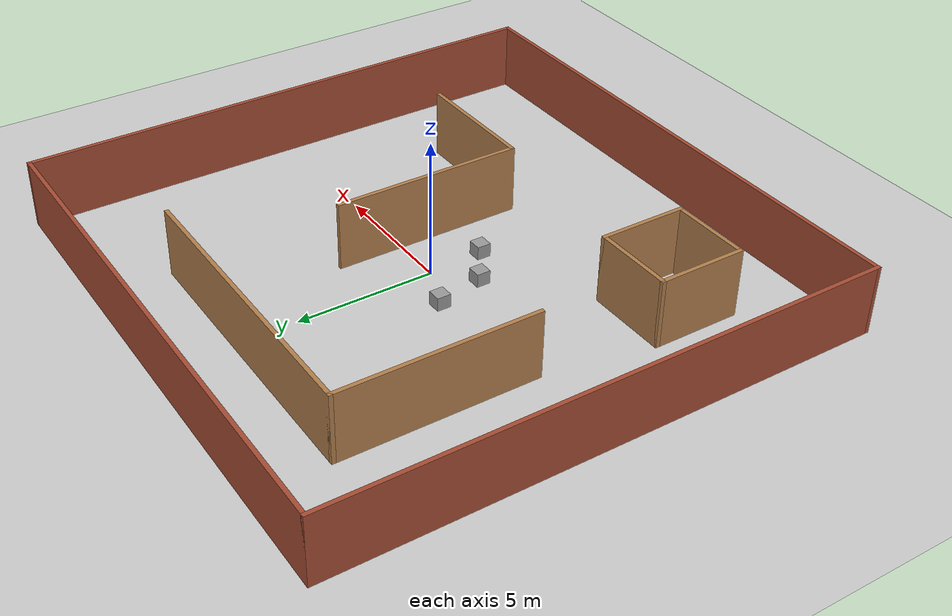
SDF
<sdf version="1.7">
 <world name="default">
  <light name="sun" type="directional">
   <pose>0 0 10 0 -0 0</pose>
   <diffuse>0.8 0.8 0.8 1</diffuse>
   <specular>0.2 0.2 0.2 1</specular>
   <attenuation>
    <range>1000</range>
    <constant>0.9</constant>
    <linear>0.01</linear>
    <quadratic>0.001</quadratic>
   </attenuation>
   <direction>-0.5 0.1 -0.9</direction>
   <spot><inner_angle>0</inner_angle><outer_angle>0</outer_angle><falloff>0</falloff></spot>
  </light>
  <model name="ground_plane">
   <static>1</static>
   <link name="link">
    <collision name="collision">
     <geometry><plane><normal>0 0 1</normal><size>100 100</size></plane></geometry>
     <surface><friction><ode><mu>100</mu><mu2>50</mu2></ode></friction></surface>
    </collision>
    <visual name="visual">
     <cast_shadows>0</cast_shadows>
     <geometry><plane><normal>0 0 1</normal><size>100 100</size></plane></geometry>
     <material>
      <script><uri>file://media/materials/scripts/gazebo.material</uri><name>Gazebo/Grey</name></script>
     </material>
    </visual>
   </link>
  </model>
  <model name="obstacle_0">
   <link name="link">
    <pose>0 0 0.9 0 -0 0</pose>
    <inertial>
     <mass>1</mass>
     <inertia><ixx>0.042</ixx><ixy>0</ixy><ixz>0</ixz><iyy>0.042</iyy><iyz>0</iyz><izz>0.042</izz></inertia>
    </inertial>
    <collision name="collision">
     <geometry><box><size>0.5 0.5 0.5</size></box></geometry>
     <surface>
      <contact>
       <poissons_ratio>0.347</poissons_ratio>
       <elastic_modulus>8.8e+09</elastic_modulus>
       <ode><kp>100000</kp><kd>100</kd><max_vel>100</max_vel><min_depth>0.001</min_depth></ode>
      </contact>
      <friction>
       <torsional>
        <coefficient>1</coefficient>
        <use_patch_radius>0</use_patch_radius>
        <surface_radius>0.01</surface_radius>
       </torsional>
      </friction>
     </surface>
    </collision>
    <visual name="visual">
     <geometry><box><size>0.5 0.5 0.5</size></box></geometry>
     <material>
      <script><uri>file://media/materials/scripts/gazebo.material</uri><name>Gazebo/Grey</name></script>
     </material>
    </visual>
   </link>
   <pose>-1.64647 0.681065 -0.651024 0 -0 0</pose>
  </model>
  <model name="obstacle_1">
   <link name="link">
    <pose>0 0 0.9 0 -0 0</pose>
    <inertial>
     <mass>1</mass>
     <inertia><ixx>0.042</ixx><ixy>0</ixy><ixz>0</ixz><iyy>0.042</iyy><iyz>0</iyz><izz>0.042</izz></inertia>
    </inertial>
    <collision name="collision">
     <geometry><box><size>0.5 0.5 0.5</size></box></geometry>
     <surface>
      <contact>
       <poissons_ratio>0.347</poissons_ratio>
       <elastic_modulus>8.8e+09</elastic_modulus>
       <ode><kp>100000</kp><kd>100</kd><max_vel>100</max_vel><min_depth>0.001</min_depth></ode>
      </contact>
      <friction>
       <torsional>
        <coefficient>1</coefficient>
        <use_patch_radius>0</use_patch_radius>
        <surface_radius>0.01</surface_radius>
       </torsional>
      </friction>
     </surface>
    </collision>
    <visual name="visual">
     <geometry><box><size>0.5 0.5 0.5</size></box></geometry>
     <material>
      <script><uri>file://media/materials/scripts/gazebo.material</uri><name>Gazebo/Grey</name></script>
     </material>
    </visual>
   </link>
   <pose>0.08192 -2.03105 -0.651024 0 -0 0</pose>
  </model>
  <gravity>0 0 -9.8</gravity>
  <magnetic_field>6e-06 2.3e-05 -4.2e-05</magnetic_field>
  <atmosphere type="adiabatic"/>
  <physics name="default_physics" default="0" type="ode">
   <max_step_size>0.001</max_step_size>
   <real_time_factor>1</real_time_factor>
   <real_time_update_rate>1000</real_time_update_rate>
  </physics>
  <scene><ambient>0.4 0.4 0.4 1</ambient><background>0.7 0.7 0.7 1</background><shadows>1</shadows></scene>
  <audio><device>default</device></audio>
  <spherical_coordinates>
   <surface_model>EARTH_WGS84</surface_model>
   <latitude_deg>0</latitude_deg>
   <longitude_deg>0</longitude_deg>
   <elevation>0</elevation>
   <heading_deg>0</heading_deg>
  </spherical_coordinates>
  <model name="test_world">
   <pose>-0.054909 0.04323 0 0 -0 0</pose>
   <link name="Wall_0">
    <collision name="Wall_0_Collision">
     <geometry><box><size>20 0.15 2.5</size></box></geometry>
     <pose>0 0 1.25 0 -0 0</pose>
    </collision>
    <visual name="Wall_0_Visual">
     <pose>0 0 1.25 0 -0 0</pose>
     <geometry><box><size>20 0.15 2.5</size></box></geometry>
     <material>
      <script><uri>file://media/materials/scripts/gazebo.material</uri><name>Gazebo/Bricks</name></script>
      <ambient>1 1 1 1</ambient>
     </material>
     <meta><layer>0</layer></meta>
    </visual>
    <pose>0 -9.925 0 0 -0 3.14159</pose>
   </link>
   <link name="Wall_10">
    <collision name="Wall_10_Collision">
     <geometry><box><size>7.25 0.15 2.5</size></box></geometry>
     <pose>0 0 1.25 0 -0 0</pose>
    </collision>
    <visual name="Wall_10_Visual">
     <pose>0 0 1.25 0 -0 0</pose>
     <geometry><box><size>7.25 0.15 2.5</size></box></geometry>
     <material>
      <script><uri>file://media/materials/scripts/gazebo.material</uri><name>Gazebo/Wood</name></script>
      <ambient>1 1 1 1</ambient>
     </material>
     <meta><layer>0</layer></meta>
    </visual>
    <pose>-6.24837 3.63958 0 0 -0 -1.5708</pose>
   </link>
   <link name="Wall_12">
    <collision name="Wall_12_Collision">
     <geometry><box><size>11 0.15 2.5</size></box></geometry>
     <pose>0 0 1.25 0 -0 0</pose>
    </collision>
    <visual name="Wall_12_Visual">
     <pose>0 0 1.25 0 -0 0</pose>
     <geometry><box><size>11 0.15 2.5</size></box></geometry>
     <material>
      <script><uri>file://media/materials/scripts/gazebo.material</uri><name>Gazebo/Wood</name></script>
      <ambient>1 1 1 1</ambient>
     </material>
     <meta><layer>0</layer></meta>
    </visual>
    <pose>-0.823369 7.18958 0 0 -0 0</pose>
   </link>
   <link name="Wall_2">
    <collision name="Wall_2_Collision">
     <geometry><box><size>20 0.15 2.5</size></box></geometry>
     <pose>0 0 1.25 0 -0 0</pose>
    </collision>
    <visual name="Wall_2_Visual">
     <pose>0 0 1.25 0 -0 0</pose>
     <geometry><box><size>20 0.15 2.5</size></box></geometry>
     <material>
      <script><uri>file://media/materials/scripts/gazebo.material</uri><name>Gazebo/Bricks</name></script>
      <ambient>1 1 1 1</ambient>
     </material>
     <meta><layer>0</layer></meta>
    </visual>
    <pose>-9.925 0 0 0 -0 1.5708</pose>
   </link>
   <link name="Wall_20">
    <collision name="Wall_20_Collision">
     <geometry><box><size>3.25 0.15 2.5</size></box></geometry>
     <pose>0 0 1.25 0 -0 0</pose>
    </collision>
    <visual name="Wall_20_Visual">
     <pose>0 0 1.25 0 -0 0</pose>
     <geometry><box><size>3.25 0.15 2.5</size></box></geometry>
     <material>
      <script><uri>file://media/materials/scripts/gazebo.material</uri><name>Gazebo/Wood</name></script>
      <ambient>1 1 1 1</ambient>
     </material>
     <meta><layer>0</layer></meta>
    </visual>
    <pose>-6.99006 -5.43848 0 0 -0 -1.5708</pose>
   </link>
   <link name="Wall_22">
    <collision name="Wall_22_Collision">
     <geometry><box><size>3 0.15 2.5</size></box></geometry>
     <pose>0 0 1.25 0 -0 0</pose>
    </collision>
    <visual name="Wall_22_Visual">
     <pose>0 0 1.25 0 -0 0</pose>
     <geometry><box><size>3 0.15 2.5</size></box></geometry>
     <material>
      <script><uri>file://media/materials/scripts/gazebo.material</uri><name>Gazebo/Wood</name></script>
      <ambient>1 1 1 1</ambient>
     </material>
     <meta><layer>0</layer></meta>
    </visual>
    <pose>-5.56506 -3.88848 0 0 -0 0</pose>
   </link>
   <link name="Wall_23">
    <collision name="Wall_23_Collision">
     <geometry><box><size>3.25 0.15 2.5</size></box></geometry>
     <pose>0 0 1.25 0 -0 0</pose>
    </collision>
    <visual name="Wall_23_Visual">
     <pose>0 0 1.25 0 -0 0</pose>
     <geometry><box><size>3.25 0.15 2.5</size></box></geometry>
     <material>
      <script><uri>file://media/materials/scripts/gazebo.material</uri><name>Gazebo/Wood</name></script>
      <ambient>1 1 1 1</ambient>
     </material>
     <meta><layer>0</layer></meta>
    </visual>
    <pose>-4.14006 -5.43848 0 0 -0 -1.5708</pose>
   </link>
   <link name="Wall_24">
    <collision name="Wall_24_Collision">
     <geometry><box><size>3 0.15 2.5</size></box></geometry>
     <pose>0 0 1.25 0 -0 0</pose>
    </collision>
    <visual name="Wall_24_Visual">
     <pose>0 0 1.25 0 -0 0</pose>
     <geometry><box><size>3 0.15 2.5</size></box></geometry>
     <material>
      <script><uri>file://media/materials/scripts/gazebo.material</uri><name>Gazebo/Wood</name></script>
      <ambient>1 1 1 1</ambient>
     </material>
     <meta><layer>0</layer></meta>
    </visual>
    <pose>-5.56506 -6.98848 0 0 -0 3.14159</pose>
   </link>
   <link name="Wall_4">
    <collision name="Wall_4_Collision">
     <geometry><box><size>20 0.15 2.5</size></box></geometry>
     <pose>0 0 1.25 0 -0 0</pose>
    </collision>
    <visual name="Wall_4_Visual">
     <pose>0 0 1.25 0 -0 0</pose>
     <geometry><box><size>20 0.15 2.5</size></box></geometry>
     <material>
      <script><uri>file://media/materials/scripts/gazebo.material</uri><name>Gazebo/Bricks</name></script>
      <ambient>1 1 1 1</ambient>
     </material>
     <meta><layer>0</layer></meta>
    </visual>
    <pose>0 9.925 0 0 -0 0</pose>
   </link>
   <link name="Wall_5">
    <collision name="Wall_5_Collision">
     <geometry><box><size>20 0.15 2.5</size></box></geometry>
     <pose>0 0 1.25 0 -0 0</pose>
    </collision>
    <visual name="Wall_5_Visual">
     <pose>0 0 1.25 0 -0 0</pose>
     <geometry><box><size>20 0.15 2.5</size></box></geometry>
     <material>
      <script><uri>file://media/materials/scripts/gazebo.material</uri><name>Gazebo/Bricks</name></script>
      <ambient>1 1 1 1</ambient>
     </material>
     <meta><layer>0</layer></meta>
    </visual>
    <pose>9.925 0 0 0 -0 -1.5708</pose>
   </link>
   <link name="Wall_7">
    <collision name="Wall_7_Collision">
     <geometry><box><size>7 0.15 2.5</size></box></geometry>
     <pose>0 0 1.25 0 -0 0</pose>
    </collision>
    <visual name="Wall_7_Visual">
     <pose>0 0 1.25 0 -0 0</pose>
     <geometry><box><size>7 0.15 2.5</size></box></geometry>
     <material>
      <script><uri>file://media/materials/scripts/gazebo.material</uri><name>Gazebo/Wood</name></script>
      <ambient>1 1 1 1</ambient>
     </material>
     <meta><layer>0</layer></meta>
    </visual>
    <pose>1.9807 -1.15765 0 0 -0 -1.5708</pose>
   </link>
   <link name="Wall_8">
    <collision name="Wall_8_Collision">
     <geometry><box><size>4.75 0.15 2.5</size></box></geometry>
     <pose>0 0 1.25 0 -0 0</pose>
    </collision>
    <visual name="Wall_8_Visual">
     <pose>0 0 1.25 0 -0 0</pose>
     <geometry><box><size>4.75 0.15 2.5</size></box></geometry>
     <material>
      <script><uri>file://media/materials/scripts/gazebo.material</uri><name>Gazebo/Wood</name></script>
      <ambient>1 1 1 1</ambient>
     </material>
     <meta><layer>0</layer></meta>
    </visual>
    <pose>4.32116 -4.58265 0 0 -0 0</pose>
   </link>
   <static>1</static>
  </model>
  <model name="obstacle_2">
   <link name="link">
    <pose>0 0 0.9 0 -0 0</pose>
    <inertial>
     <mass>1</mass>
     <inertia><ixx>0.042</ixx><ixy>0</ixy><ixz>0</ixz><iyy>0.042</iyy><iyz>0</iyz><izz>0.042</izz></inertia>
    </inertial>
    <collision name="collision">
     <geometry><box><size>0.5 0.5 0.5</size></box></geometry>
     <surface>
      <contact>
       <poissons_ratio>0.347</poissons_ratio>
       <elastic_modulus>8.8e+09</elastic_modulus>
       <ode><kp>100000</kp><kd>100</kd><max_vel>100</max_vel><min_depth>0.001</min_depth></ode>
      </contact>
      <friction>
       <torsional>
        <coefficient>1</coefficient>
        <use_patch_radius>0</use_patch_radius>
        <surface_radius>0.01</surface_radius>
       </torsional>
      </friction>
     </surface>
    </collision>
    <visual name="visual">
     <geometry><box><size>0.5 0.5 0.5</size></box></geometry>
     <material>
      <script><uri>file://media/materials/scripts/gazebo.material</uri><name>Gazebo/Grey</name></script>
     </material>
    </visual>
   </link>
   <pose>-1.2321 -1.13113 -0.651024 0 -0 0</pose>
  </model>
 </world>
</sdf>
